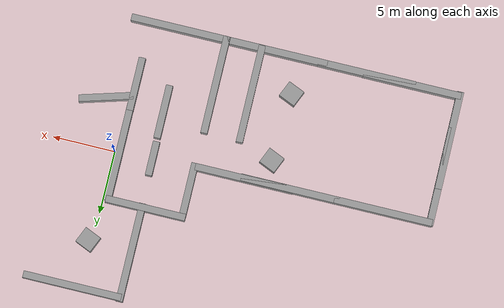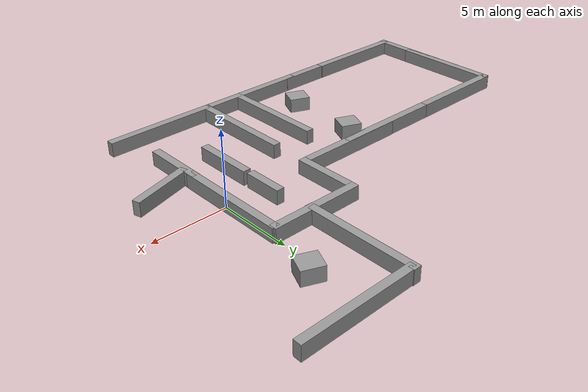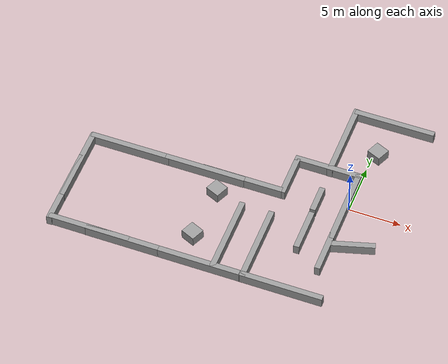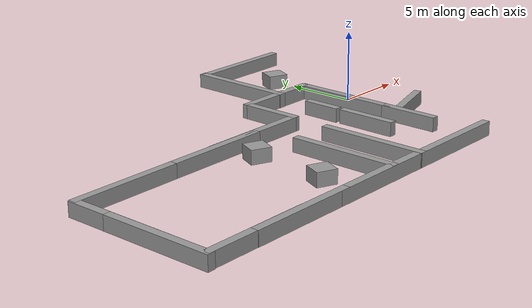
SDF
<sdf version="1.6">
 <model name="Maze01">
  <link name="link_4_clone_0">
   <pose>-21.4897 -10.6297 9e-06 0 -0 0</pose>
   <inertial>
    <mass>4.30693</mass>
    <inertia><ixx>0.46587</ixx><ixy>0</ixy><ixz>0</ixz><iyy>22.6991</iyy><iyz>0</iyz><izz>22.4471</izz></inertia>
   </inertial>
   <visual name="visual">
    <geometry><box><size>7.88951 0.545905 1</size></box></geometry>
    <material>
     <lighting>1</lighting>
     <script><uri>file://media/materials/scripts/gazebo.material</uri><name>Gazebo/Grey</name></script>
     <ambient>0.3 0.3 0.3 1</ambient>
     <diffuse>0.7 0.7 0.7 1</diffuse>
     <specular>0.01 0.01 0.01 1</specular>
     <emissive>0 0 0 1</emissive>
     <shader type="pixel"/>
    </material>
   </visual>
   <collision name="collision">
    <geometry><box><size>7.88951 0.545905 1</size></box></geometry>
    <surface>
     <friction>
      <ode><mu>1</mu><mu2>1</mu2><fdir1>0 0 0</fdir1><slip1>0</slip1><slip2>0</slip2></ode>
      <torsional>
       <coefficient>1</coefficient>
       <patch_radius>0</patch_radius>
       <surface_radius>0</surface_radius>
       <use_patch_radius>1</use_patch_radius>
       <ode><slip>0</slip></ode>
      </torsional>
     </friction>
     <bounce><restitution_coefficient>0</restitution_coefficient><threshold>1e+06</threshold></bounce>
     <contact>
      <collide_without_contact>0</collide_without_contact>
      <collide_without_contact_bitmask>1</collide_without_contact_bitmask>
      <collide_bitmask>1</collide_bitmask>
      <ode>
       <soft_cfm>0</soft_cfm>
       <soft_erp>0.2</soft_erp>
       <kp>1e+13</kp>
       <kd>1</kd>
       <max_vel>0.01</max_vel>
       <min_depth>0</min_depth>
      </ode>
      <bullet>
       <split_impulse>1</split_impulse>
       <split_impulse_penetration_threshold>-0.01</split_impulse_penetration_threshold>
       <soft_cfm>0</soft_cfm>
       <soft_erp>0.2</soft_erp>
       <kp>1e+13</kp>
       <kd>1</kd>
      </bullet>
     </contact>
    </surface>
   </collision>
  </link>
  <link name="link_4_clone_0_clone">
   <pose>-17.8012 -10.6509 9e-06 0 -0 0</pose>
   <inertial>
    <mass>4.30693</mass>
    <inertia><ixx>0.46587</ixx><ixy>0</ixy><ixz>0</ixz><iyy>22.6991</iyy><iyz>0</iyz><izz>22.4471</izz></inertia>
   </inertial>
   <visual name="visual">
    <geometry><box><size>7.88951 0.545905 1</size></box></geometry>
    <material>
     <lighting>1</lighting>
     <script><uri>file://media/materials/scripts/gazebo.material</uri><name>Gazebo/Grey</name></script>
     <ambient>0.3 0.3 0.3 1</ambient>
     <diffuse>0.7 0.7 0.7 1</diffuse>
     <specular>0.01 0.01 0.01 1</specular>
     <emissive>0 0 0 1</emissive>
     <shader type="pixel"/>
    </material>
   </visual>
   <collision name="collision">
    <geometry><box><size>7.88951 0.545905 1</size></box></geometry>
    <surface>
     <friction>
      <ode><mu>1</mu><mu2>1</mu2><fdir1>0 0 0</fdir1><slip1>0</slip1><slip2>0</slip2></ode>
      <torsional>
       <coefficient>1</coefficient>
       <patch_radius>0</patch_radius>
       <surface_radius>0</surface_radius>
       <use_patch_radius>1</use_patch_radius>
       <ode><slip>0</slip></ode>
      </torsional>
     </friction>
     <bounce><restitution_coefficient>0</restitution_coefficient><threshold>1e+06</threshold></bounce>
     <contact>
      <collide_without_contact>0</collide_without_contact>
      <collide_without_contact_bitmask>1</collide_without_contact_bitmask>
      <collide_bitmask>1</collide_bitmask>
      <ode>
       <soft_cfm>0</soft_cfm>
       <soft_erp>0.2</soft_erp>
       <kp>1e+13</kp>
       <kd>1</kd>
       <max_vel>0.01</max_vel>
       <min_depth>0</min_depth>
      </ode>
      <bullet>
       <split_impulse>1</split_impulse>
       <split_impulse_penetration_threshold>-0.01</split_impulse_penetration_threshold>
       <soft_cfm>0</soft_cfm>
       <soft_erp>0.2</soft_erp>
       <kp>1e+13</kp>
       <kd>1</kd>
      </bullet>
     </contact>
    </surface>
   </collision>
  </link>
  <link name="link_4_clone_0_clone_clone">
   <pose>-21.5718 -0.350427 9e-06 0 -0 0</pose>
   <inertial>
    <mass>4.30693</mass>
    <inertia><ixx>0.46587</ixx><ixy>0</ixy><ixz>0</ixz><iyy>22.6991</iyy><iyz>0</iyz><izz>22.4471</izz></inertia>
   </inertial>
   <visual name="visual">
    <geometry><box><size>7.88951 0.545905 1</size></box></geometry>
    <material>
     <lighting>1</lighting>
     <script><uri>file://media/materials/scripts/gazebo.material</uri><name>Gazebo/Grey</name></script>
     <ambient>0.3 0.3 0.3 1</ambient>
     <diffuse>0.7 0.7 0.7 1</diffuse>
     <specular>0.01 0.01 0.01 1</specular>
     <emissive>0 0 0 1</emissive>
     <shader type="pixel"/>
    </material>
   </visual>
   <collision name="collision">
    <geometry><box><size>7.88951 0.545905 1</size></box></geometry>
    <surface>
     <friction>
      <ode><mu>1</mu><mu2>1</mu2><fdir1>0 0 0</fdir1><slip1>0</slip1><slip2>0</slip2></ode>
      <torsional>
       <coefficient>1</coefficient>
       <patch_radius>0</patch_radius>
       <surface_radius>0</surface_radius>
       <use_patch_radius>1</use_patch_radius>
       <ode><slip>0</slip></ode>
      </torsional>
     </friction>
     <bounce><restitution_coefficient>0</restitution_coefficient><threshold>1e+06</threshold></bounce>
     <contact>
      <collide_without_contact>0</collide_without_contact>
      <collide_without_contact_bitmask>1</collide_without_contact_bitmask>
      <collide_bitmask>1</collide_bitmask>
      <ode>
       <soft_cfm>0</soft_cfm>
       <soft_erp>0.2</soft_erp>
       <kp>1e+13</kp>
       <kd>1</kd>
       <max_vel>0.01</max_vel>
       <min_depth>0</min_depth>
      </ode>
      <bullet>
       <split_impulse>1</split_impulse>
       <split_impulse_penetration_threshold>-0.01</split_impulse_penetration_threshold>
       <soft_cfm>0</soft_cfm>
       <soft_erp>0.2</soft_erp>
       <kp>1e+13</kp>
       <kd>1</kd>
      </bullet>
     </contact>
    </surface>
   </collision>
  </link>
  <link name="link_4_clone_0_clone_clone_0">
   <pose>-14.0594 -0.346312 9e-06 0 -0 0</pose>
   <inertial>
    <mass>4.30693</mass>
    <inertia><ixx>0.46587</ixx><ixy>0</ixy><ixz>0</ixz><iyy>22.6991</iyy><iyz>0</iyz><izz>22.4471</izz></inertia>
   </inertial>
   <visual name="visual">
    <geometry><box><size>7.88951 0.545905 1</size></box></geometry>
    <material>
     <lighting>1</lighting>
     <script><uri>file://media/materials/scripts/gazebo.material</uri><name>Gazebo/Grey</name></script>
     <ambient>0.3 0.3 0.3 1</ambient>
     <diffuse>0.7 0.7 0.7 1</diffuse>
     <specular>0.01 0.01 0.01 1</specular>
     <emissive>0 0 0 1</emissive>
     <shader type="pixel"/>
    </material>
   </visual>
   <collision name="collision">
    <geometry><box><size>7.88951 0.545905 1</size></box></geometry>
    <surface>
     <friction>
      <ode><mu>1</mu><mu2>1</mu2><fdir1>0 0 0</fdir1><slip1>0</slip1><slip2>0</slip2></ode>
      <torsional>
       <coefficient>1</coefficient>
       <patch_radius>0</patch_radius>
       <surface_radius>0</surface_radius>
       <use_patch_radius>1</use_patch_radius>
       <ode><slip>0</slip></ode>
      </torsional>
     </friction>
     <bounce><restitution_coefficient>0</restitution_coefficient><threshold>1e+06</threshold></bounce>
     <contact>
      <collide_without_contact>0</collide_without_contact>
      <collide_without_contact_bitmask>1</collide_without_contact_bitmask>
      <collide_bitmask>1</collide_bitmask>
      <ode>
       <soft_cfm>0</soft_cfm>
       <soft_erp>0.2</soft_erp>
       <kp>1e+13</kp>
       <kd>1</kd>
       <max_vel>0.01</max_vel>
       <min_depth>0</min_depth>
      </ode>
      <bullet>
       <split_impulse>1</split_impulse>
       <split_impulse_penetration_threshold>-0.01</split_impulse_penetration_threshold>
       <soft_cfm>0</soft_cfm>
       <soft_erp>0.2</soft_erp>
       <kp>1e+13</kp>
       <kd>1</kd>
      </bullet>
     </contact>
    </surface>
   </collision>
  </link>
  <link name="link_4_clone_0_clone_clone_1">
   <pose>-10.6658 -10.6545 9e-06 0 -0 0</pose>
   <inertial>
    <mass>4.30693</mass>
    <inertia><ixx>0.46587</ixx><ixy>0</ixy><ixz>0</ixz><iyy>22.6991</iyy><iyz>0</iyz><izz>22.4471</izz></inertia>
   </inertial>
   <visual name="visual">
    <geometry><box><size>7.88951 0.545905 1</size></box></geometry>
    <material>
     <lighting>1</lighting>
     <script><uri>file://media/materials/scripts/gazebo.material</uri><name>Gazebo/Grey</name></script>
     <ambient>0.3 0.3 0.3 1</ambient>
     <diffuse>0.7 0.7 0.7 1</diffuse>
     <specular>0.01 0.01 0.01 1</specular>
     <emissive>0 0 0 1</emissive>
     <shader type="pixel"/>
    </material>
   </visual>
   <collision name="collision">
    <geometry><box><size>7.88951 0.545905 1</size></box></geometry>
    <surface>
     <friction>
      <ode><mu>1</mu><mu2>1</mu2><fdir1>0 0 0</fdir1><slip1>0</slip1><slip2>0</slip2></ode>
      <torsional>
       <coefficient>1</coefficient>
       <patch_radius>0</patch_radius>
       <surface_radius>0</surface_radius>
       <use_patch_radius>1</use_patch_radius>
       <ode><slip>0</slip></ode>
      </torsional>
     </friction>
     <bounce><restitution_coefficient>0</restitution_coefficient><threshold>1e+06</threshold></bounce>
     <contact>
      <collide_without_contact>0</collide_without_contact>
      <collide_without_contact_bitmask>1</collide_without_contact_bitmask>
      <collide_bitmask>1</collide_bitmask>
      <ode>
       <soft_cfm>0</soft_cfm>
       <soft_erp>0.2</soft_erp>
       <kp>1e+13</kp>
       <kd>1</kd>
       <max_vel>0.01</max_vel>
       <min_depth>0</min_depth>
      </ode>
      <bullet>
       <split_impulse>1</split_impulse>
       <split_impulse_penetration_threshold>-0.01</split_impulse_penetration_threshold>
       <soft_cfm>0</soft_cfm>
       <soft_erp>0.2</soft_erp>
       <kp>1e+13</kp>
       <kd>1</kd>
      </bullet>
     </contact>
    </surface>
   </collision>
  </link>
  <link name="link_4_clone_0_clone_clone_1_clone">
   <pose>-3.41756 3.78222 9e-06 0 -0 0</pose>
   <inertial>
    <mass>3.50538</mass>
    <inertia><ixx>0.379168</ixx><ixy>0</ixy><ixz>0</ixz><iyy>12.3366</iyy><iyz>0</iyz><izz>12.1315</izz></inertia>
   </inertial>
   <visual name="visual">
    <geometry><box><size>6.42122 0.545905 1</size></box></geometry>
    <material>
     <lighting>1</lighting>
     <script><uri>file://media/materials/scripts/gazebo.material</uri><name>Gazebo/Grey</name></script>
     <ambient>0.3 0.3 0.3 1</ambient>
     <diffuse>0.7 0.7 0.7 1</diffuse>
     <specular>0.01 0.01 0.01 1</specular>
     <emissive>0 0 0 1</emissive>
     <shader type="pixel"/>
    </material>
   </visual>
   <collision name="collision">
    <geometry><box><size>6.42122 0.545905 1</size></box></geometry>
    <surface>
     <friction>
      <ode><mu>1</mu><mu2>1</mu2><fdir1>0 0 0</fdir1><slip1>0</slip1><slip2>0</slip2></ode>
      <torsional>
       <coefficient>1</coefficient>
       <patch_radius>0</patch_radius>
       <surface_radius>0</surface_radius>
       <use_patch_radius>1</use_patch_radius>
       <ode><slip>0</slip></ode>
      </torsional>
     </friction>
     <bounce><restitution_coefficient>0</restitution_coefficient><threshold>1e+06</threshold></bounce>
     <contact>
      <collide_without_contact>0</collide_without_contact>
      <collide_without_contact_bitmask>1</collide_without_contact_bitmask>
      <collide_bitmask>1</collide_bitmask>
      <ode>
       <soft_cfm>0</soft_cfm>
       <soft_erp>0.2</soft_erp>
       <kp>1e+13</kp>
       <kd>1</kd>
       <max_vel>0.01</max_vel>
       <min_depth>0</min_depth>
      </ode>
      <bullet>
       <split_impulse>1</split_impulse>
       <split_impulse_penetration_threshold>-0.01</split_impulse_penetration_threshold>
       <soft_cfm>0</soft_cfm>
       <soft_erp>0.2</soft_erp>
       <kp>1e+13</kp>
       <kd>1</kd>
      </bullet>
     </contact>
    </surface>
   </collision>
  </link>
  <link name="link_4_clone_0_clone_clone_1_clone_0">
   <pose>-2.67814 -10.6624 9e-06 0 -0 0</pose>
   <inertial>
    <mass>4.30693</mass>
    <inertia><ixx>0.46587</ixx><ixy>0</ixy><ixz>0</ixz><iyy>22.6991</iyy><iyz>0</iyz><izz>22.4471</izz></inertia>
   </inertial>
   <visual name="visual">
    <geometry><box><size>7.88951 0.545905 1</size></box></geometry>
    <material>
     <lighting>1</lighting>
     <script><uri>file://media/materials/scripts/gazebo.material</uri><name>Gazebo/Grey</name></script>
     <ambient>0.3 0.3 0.3 1</ambient>
     <diffuse>0.7 0.7 0.7 1</diffuse>
     <specular>0.01 0.01 0.01 1</specular>
     <emissive>0 0 0 1</emissive>
     <shader type="pixel"/>
    </material>
   </visual>
   <collision name="collision">
    <geometry><box><size>7.88951 0.545905 1</size></box></geometry>
    <surface>
     <friction>
      <ode><mu>1</mu><mu2>1</mu2><fdir1>0 0 0</fdir1><slip1>0</slip1><slip2>0</slip2></ode>
      <torsional>
       <coefficient>1</coefficient>
       <patch_radius>0</patch_radius>
       <surface_radius>0</surface_radius>
       <use_patch_radius>1</use_patch_radius>
       <ode><slip>0</slip></ode>
      </torsional>
     </friction>
     <bounce><restitution_coefficient>0</restitution_coefficient><threshold>1e+06</threshold></bounce>
     <contact>
      <collide_without_contact>0</collide_without_contact>
      <collide_without_contact_bitmask>1</collide_without_contact_bitmask>
      <collide_bitmask>1</collide_bitmask>
      <ode>
       <soft_cfm>0</soft_cfm>
       <soft_erp>0.2</soft_erp>
       <kp>1e+13</kp>
       <kd>1</kd>
       <max_vel>0.01</max_vel>
       <min_depth>0</min_depth>
      </ode>
      <bullet>
       <split_impulse>1</split_impulse>
       <split_impulse_penetration_threshold>-0.01</split_impulse_penetration_threshold>
       <soft_cfm>0</soft_cfm>
       <soft_erp>0.2</soft_erp>
       <kp>1e+13</kp>
       <kd>1</kd>
      </bullet>
     </contact>
    </surface>
   </collision>
  </link>
  <link name="link_4_clone_0_clone_clone_1_clone_0_clone_0">
   <pose>0.695253 11.0512 9e-06 0 -0 0</pose>
   <inertial>
    <mass>4.30693</mass>
    <inertia><ixx>0.46587</ixx><ixy>0</ixy><ixz>0</ixz><iyy>22.6991</iyy><iyz>0</iyz><izz>22.4471</izz></inertia>
   </inertial>
   <visual name="visual">
    <geometry><box><size>7.88951 0.545905 1</size></box></geometry>
    <material>
     <lighting>1</lighting>
     <script><uri>file://media/materials/scripts/gazebo.material</uri><name>Gazebo/Grey</name></script>
     <ambient>0.3 0.3 0.3 1</ambient>
     <diffuse>0.7 0.7 0.7 1</diffuse>
     <specular>0.01 0.01 0.01 1</specular>
     <emissive>0 0 0 1</emissive>
     <shader type="pixel"/>
    </material>
   </visual>
   <collision name="collision">
    <geometry><box><size>7.88951 0.545905 1</size></box></geometry>
    <surface>
     <friction>
      <ode><mu>1</mu><mu2>1</mu2><fdir1>0 0 0</fdir1><slip1>0</slip1><slip2>0</slip2></ode>
      <torsional>
       <coefficient>1</coefficient>
       <patch_radius>0</patch_radius>
       <surface_radius>0</surface_radius>
       <use_patch_radius>1</use_patch_radius>
       <ode><slip>0</slip></ode>
      </torsional>
     </friction>
     <bounce><restitution_coefficient>0</restitution_coefficient><threshold>1e+06</threshold></bounce>
     <contact>
      <collide_without_contact>0</collide_without_contact>
      <collide_without_contact_bitmask>1</collide_without_contact_bitmask>
      <collide_bitmask>1</collide_bitmask>
      <ode>
       <soft_cfm>0</soft_cfm>
       <soft_erp>0.2</soft_erp>
       <kp>1e+13</kp>
       <kd>1</kd>
       <max_vel>0.01</max_vel>
       <min_depth>0</min_depth>
      </ode>
      <bullet>
       <split_impulse>1</split_impulse>
       <split_impulse_penetration_threshold>-0.01</split_impulse_penetration_threshold>
       <soft_cfm>0</soft_cfm>
       <soft_erp>0.2</soft_erp>
       <kp>1e+13</kp>
       <kd>1</kd>
      </bullet>
     </contact>
    </surface>
   </collision>
  </link>
  <link name="link_4_clone_0_clone_clone_2">
   <pose>-10.3733 -0.31076 9e-06 0 -0 0</pose>
   <inertial>
    <mass>4.30693</mass>
    <inertia><ixx>0.46587</ixx><ixy>0</ixy><ixz>0</ixz><iyy>22.6991</iyy><iyz>0</iyz><izz>22.4471</izz></inertia>
   </inertial>
   <visual name="visual">
    <geometry><box><size>7.88951 0.545905 1</size></box></geometry>
    <material>
     <lighting>1</lighting>
     <script><uri>file://media/materials/scripts/gazebo.material</uri><name>Gazebo/Grey</name></script>
     <ambient>0.3 0.3 0.3 1</ambient>
     <diffuse>0.7 0.7 0.7 1</diffuse>
     <specular>0.01 0.01 0.01 1</specular>
     <emissive>0 0 0 1</emissive>
     <shader type="pixel"/>
    </material>
   </visual>
   <collision name="collision">
    <geometry><box><size>7.88951 0.545905 1</size></box></geometry>
    <surface>
     <friction>
      <ode><mu>1</mu><mu2>1</mu2><fdir1>0 0 0</fdir1><slip1>0</slip1><slip2>0</slip2></ode>
      <torsional>
       <coefficient>1</coefficient>
       <patch_radius>0</patch_radius>
       <surface_radius>0</surface_radius>
       <use_patch_radius>1</use_patch_radius>
       <ode><slip>0</slip></ode>
      </torsional>
     </friction>
     <bounce><restitution_coefficient>0</restitution_coefficient><threshold>1e+06</threshold></bounce>
     <contact>
      <collide_without_contact>0</collide_without_contact>
      <collide_without_contact_bitmask>1</collide_without_contact_bitmask>
      <collide_bitmask>1</collide_bitmask>
      <ode>
       <soft_cfm>0</soft_cfm>
       <soft_erp>0.2</soft_erp>
       <kp>1e+13</kp>
       <kd>1</kd>
       <max_vel>0.01</max_vel>
       <min_depth>0</min_depth>
      </ode>
      <bullet>
       <split_impulse>1</split_impulse>
       <split_impulse_penetration_threshold>-0.01</split_impulse_penetration_threshold>
       <soft_cfm>0</soft_cfm>
       <soft_erp>0.2</soft_erp>
       <kp>1e+13</kp>
       <kd>1</kd>
      </bullet>
     </contact>
    </surface>
   </collision>
  </link>
  <link name="link_4_clone_1">
   <pose>-25.335 -7.00928 9e-06 0 0 -1.56693</pose>
   <inertial>
    <mass>4.30693</mass>
    <inertia><ixx>0.46587</ixx><ixy>0</ixy><ixz>0</ixz><iyy>22.6991</iyy><iyz>0</iyz><izz>22.4471</izz></inertia>
   </inertial>
   <visual name="visual">
    <geometry><box><size>7.88951 0.545905 1</size></box></geometry>
    <material>
     <lighting>1</lighting>
     <script><uri>file://media/materials/scripts/gazebo.material</uri><name>Gazebo/Grey</name></script>
     <ambient>0.3 0.3 0.3 1</ambient>
     <diffuse>0.7 0.7 0.7 1</diffuse>
     <specular>0.01 0.01 0.01 1</specular>
     <emissive>0 0 0 1</emissive>
     <shader type="pixel"/>
    </material>
   </visual>
   <collision name="collision">
    <geometry><box><size>7.88951 0.545905 1</size></box></geometry>
    <surface>
     <friction>
      <ode><mu>1</mu><mu2>1</mu2><fdir1>0 0 0</fdir1><slip1>0</slip1><slip2>0</slip2></ode>
      <torsional>
       <coefficient>1</coefficient>
       <patch_radius>0</patch_radius>
       <surface_radius>0</surface_radius>
       <use_patch_radius>1</use_patch_radius>
       <ode><slip>0</slip></ode>
      </torsional>
     </friction>
     <bounce><restitution_coefficient>0</restitution_coefficient><threshold>1e+06</threshold></bounce>
     <contact>
      <collide_without_contact>0</collide_without_contact>
      <collide_without_contact_bitmask>1</collide_without_contact_bitmask>
      <collide_bitmask>1</collide_bitmask>
      <ode>
       <soft_cfm>0</soft_cfm>
       <soft_erp>0.2</soft_erp>
       <kp>1e+13</kp>
       <kd>1</kd>
       <max_vel>0.01</max_vel>
       <min_depth>0</min_depth>
      </ode>
      <bullet>
       <split_impulse>1</split_impulse>
       <split_impulse_penetration_threshold>-0.01</split_impulse_penetration_threshold>
       <soft_cfm>0</soft_cfm>
       <soft_erp>0.2</soft_erp>
       <kp>1e+13</kp>
       <kd>1</kd>
      </bullet>
     </contact>
    </surface>
   </collision>
  </link>
  <link name="link_4_clone_1_clone">
   <pose>-25.3389 -4.07653 9e-06 0 0 -1.56693</pose>
   <inertial>
    <mass>4.30693</mass>
    <inertia><ixx>0.46587</ixx><ixy>0</ixy><ixz>0</ixz><iyy>22.6991</iyy><iyz>0</iyz><izz>22.4471</izz></inertia>
   </inertial>
   <visual name="visual">
    <geometry><box><size>7.88951 0.545905 1</size></box></geometry>
    <material>
     <lighting>1</lighting>
     <script><uri>file://media/materials/scripts/gazebo.material</uri><name>Gazebo/Grey</name></script>
     <ambient>0.3 0.3 0.3 1</ambient>
     <diffuse>0.7 0.7 0.7 1</diffuse>
     <specular>0.01 0.01 0.01 1</specular>
     <emissive>0 0 0 1</emissive>
     <shader type="pixel"/>
    </material>
   </visual>
   <collision name="collision">
    <geometry><box><size>7.88951 0.545905 1</size></box></geometry>
    <surface>
     <friction>
      <ode><mu>1</mu><mu2>1</mu2><fdir1>0 0 0</fdir1><slip1>0</slip1><slip2>0</slip2></ode>
      <torsional>
       <coefficient>1</coefficient>
       <patch_radius>0</patch_radius>
       <surface_radius>0</surface_radius>
       <use_patch_radius>1</use_patch_radius>
       <ode><slip>0</slip></ode>
      </torsional>
     </friction>
     <bounce><restitution_coefficient>0</restitution_coefficient><threshold>1e+06</threshold></bounce>
     <contact>
      <collide_without_contact>0</collide_without_contact>
      <collide_without_contact_bitmask>1</collide_without_contact_bitmask>
      <collide_bitmask>1</collide_bitmask>
      <ode>
       <soft_cfm>0</soft_cfm>
       <soft_erp>0.2</soft_erp>
       <kp>1e+13</kp>
       <kd>1</kd>
       <max_vel>0.01</max_vel>
       <min_depth>0</min_depth>
      </ode>
      <bullet>
       <split_impulse>1</split_impulse>
       <split_impulse_penetration_threshold>-0.01</split_impulse_penetration_threshold>
       <soft_cfm>0</soft_cfm>
       <soft_erp>0.2</soft_erp>
       <kp>1e+13</kp>
       <kd>1</kd>
      </bullet>
     </contact>
    </surface>
   </collision>
  </link>
  <link name="link_4_clone_1_clone_0">
   <pose>-9.31294 -6.93569 9e-06 0 0 -1.56693</pose>
   <inertial>
    <mass>4.30693</mass>
    <inertia><ixx>0.46587</ixx><ixy>0</ixy><ixz>0</ixz><iyy>22.6991</iyy><iyz>0</iyz><izz>22.4471</izz></inertia>
   </inertial>
   <visual name="visual">
    <geometry><box><size>7.88951 0.545905 1</size></box></geometry>
    <material>
     <lighting>1</lighting>
     <script><uri>file://media/materials/scripts/gazebo.material</uri><name>Gazebo/Grey</name></script>
     <ambient>0.3 0.3 0.3 1</ambient>
     <diffuse>0.7 0.7 0.7 1</diffuse>
     <specular>0.01 0.01 0.01 1</specular>
     <emissive>0 0 0 1</emissive>
     <shader type="pixel"/>
    </material>
   </visual>
   <collision name="collision">
    <geometry><box><size>7.88951 0.545905 1</size></box></geometry>
    <surface>
     <friction>
      <ode><mu>1</mu><mu2>1</mu2><fdir1>0 0 0</fdir1><slip1>0</slip1><slip2>0</slip2></ode>
      <torsional>
       <coefficient>1</coefficient>
       <patch_radius>0</patch_radius>
       <surface_radius>0</surface_radius>
       <use_patch_radius>1</use_patch_radius>
       <ode><slip>0</slip></ode>
      </torsional>
     </friction>
     <bounce><restitution_coefficient>0</restitution_coefficient><threshold>1e+06</threshold></bounce>
     <contact>
      <collide_without_contact>0</collide_without_contact>
      <collide_without_contact_bitmask>1</collide_without_contact_bitmask>
      <collide_bitmask>1</collide_bitmask>
      <ode>
       <soft_cfm>0</soft_cfm>
       <soft_erp>0.2</soft_erp>
       <kp>1e+13</kp>
       <kd>1</kd>
       <max_vel>0.01</max_vel>
       <min_depth>0</min_depth>
      </ode>
      <bullet>
       <split_impulse>1</split_impulse>
       <split_impulse_penetration_threshold>-0.01</split_impulse_penetration_threshold>
       <soft_cfm>0</soft_cfm>
       <soft_erp>0.2</soft_erp>
       <kp>1e+13</kp>
       <kd>1</kd>
      </bullet>
     </contact>
    </surface>
   </collision>
  </link>
  <link name="link_4_clone_1_clone_1">
   <pose>-6.43669 -6.98415 9e-06 0 0 -1.56693</pose>
   <inertial>
    <mass>4.30693</mass>
    <inertia><ixx>0.46587</ixx><ixy>0</ixy><ixz>0</ixz><iyy>22.6991</iyy><iyz>0</iyz><izz>22.4471</izz></inertia>
   </inertial>
   <visual name="visual">
    <geometry><box><size>7.88951 0.545905 1</size></box></geometry>
    <material>
     <lighting>1</lighting>
     <script><uri>file://media/materials/scripts/gazebo.material</uri><name>Gazebo/Grey</name></script>
     <ambient>0.3 0.3 0.3 1</ambient>
     <diffuse>0.7 0.7 0.7 1</diffuse>
     <specular>0.01 0.01 0.01 1</specular>
     <emissive>0 0 0 1</emissive>
     <shader type="pixel"/>
    </material>
   </visual>
   <collision name="collision">
    <geometry><box><size>7.88951 0.545905 1</size></box></geometry>
    <surface>
     <friction>
      <ode><mu>1</mu><mu2>1</mu2><fdir1>0 0 0</fdir1><slip1>0</slip1><slip2>0</slip2></ode>
      <torsional>
       <coefficient>1</coefficient>
       <patch_radius>0</patch_radius>
       <surface_radius>0</surface_radius>
       <use_patch_radius>1</use_patch_radius>
       <ode><slip>0</slip></ode>
      </torsional>
     </friction>
     <bounce><restitution_coefficient>0</restitution_coefficient><threshold>1e+06</threshold></bounce>
     <contact>
      <collide_without_contact>0</collide_without_contact>
      <collide_without_contact_bitmask>1</collide_without_contact_bitmask>
      <collide_bitmask>1</collide_bitmask>
      <ode>
       <soft_cfm>0</soft_cfm>
       <soft_erp>0.2</soft_erp>
       <kp>1e+13</kp>
       <kd>1</kd>
       <max_vel>0.01</max_vel>
       <min_depth>0</min_depth>
      </ode>
      <bullet>
       <split_impulse>1</split_impulse>
       <split_impulse_penetration_threshold>-0.01</split_impulse_penetration_threshold>
       <soft_cfm>0</soft_cfm>
       <soft_erp>0.2</soft_erp>
       <kp>1e+13</kp>
       <kd>1</kd>
      </bullet>
     </contact>
    </surface>
   </collision>
  </link>
  <link name="link_4_clone_1_clone_1_clone">
   <pose>-6.35585 1.56416 9e-06 0 0 -1.56693</pose>
   <inertial>
    <mass>2.3361</mass>
    <inertia><ixx>0.25269</ixx><ixy>0</ixy><ixz>0</ixz><iyy>3.75965</iyy><iyz>0</iyz><izz>3.62299</izz></inertia>
   </inertial>
   <visual name="visual">
    <geometry><box><size>4.27931 0.545905 1</size></box></geometry>
    <material>
     <lighting>1</lighting>
     <script><uri>file://media/materials/scripts/gazebo.material</uri><name>Gazebo/Grey</name></script>
     <ambient>0.3 0.3 0.3 1</ambient>
     <diffuse>0.7 0.7 0.7 1</diffuse>
     <specular>0.01 0.01 0.01 1</specular>
     <emissive>0 0 0 1</emissive>
     <shader type="pixel"/>
    </material>
   </visual>
   <collision name="collision">
    <geometry><box><size>4.27931 0.545905 1</size></box></geometry>
    <surface>
     <friction>
      <ode><mu>1</mu><mu2>1</mu2><fdir1>0 0 0</fdir1><slip1>0</slip1><slip2>0</slip2></ode>
      <torsional>
       <coefficient>1</coefficient>
       <patch_radius>0</patch_radius>
       <surface_radius>0</surface_radius>
       <use_patch_radius>1</use_patch_radius>
       <ode><slip>0</slip></ode>
      </torsional>
     </friction>
     <bounce><restitution_coefficient>0</restitution_coefficient><threshold>1e+06</threshold></bounce>
     <contact>
      <collide_without_contact>0</collide_without_contact>
      <collide_without_contact_bitmask>1</collide_without_contact_bitmask>
      <collide_bitmask>1</collide_bitmask>
      <ode>
       <soft_cfm>0</soft_cfm>
       <soft_erp>0.2</soft_erp>
       <kp>1e+13</kp>
       <kd>1</kd>
       <max_vel>0.01</max_vel>
       <min_depth>0</min_depth>
      </ode>
      <bullet>
       <split_impulse>1</split_impulse>
       <split_impulse_penetration_threshold>-0.01</split_impulse_penetration_threshold>
       <soft_cfm>0</soft_cfm>
       <soft_erp>0.2</soft_erp>
       <kp>1e+13</kp>
       <kd>1</kd>
      </bullet>
     </contact>
    </surface>
   </collision>
  </link>
  <link name="link_4_clone_1_clone_1_clone_0">
   <pose>-0.36051 -0.054697 9e-06 0 0 -1.56693</pose>
   <inertial>
    <mass>4.30693</mass>
    <inertia><ixx>0.46587</ixx><ixy>0</ixy><ixz>0</ixz><iyy>22.6991</iyy><iyz>0</iyz><izz>22.4471</izz></inertia>
   </inertial>
   <visual name="visual">
    <geometry><box><size>7.88951 0.545905 1</size></box></geometry>
    <material>
     <lighting>1</lighting>
     <script><uri>file://media/materials/scripts/gazebo.material</uri><name>Gazebo/Grey</name></script>
     <ambient>0.3 0.3 0.3 1</ambient>
     <diffuse>0.7 0.7 0.7 1</diffuse>
     <specular>0.01 0.01 0.01 1</specular>
     <emissive>0 0 0 1</emissive>
     <shader type="pixel"/>
    </material>
   </visual>
   <collision name="collision">
    <geometry><box><size>7.88951 0.545905 1</size></box></geometry>
    <surface>
     <friction>
      <ode><mu>1</mu><mu2>1</mu2><fdir1>0 0 0</fdir1><slip1>0</slip1><slip2>0</slip2></ode>
      <torsional>
       <coefficient>1</coefficient>
       <patch_radius>0</patch_radius>
       <surface_radius>0</surface_radius>
       <use_patch_radius>1</use_patch_radius>
       <ode><slip>0</slip></ode>
      </torsional>
     </friction>
     <bounce><restitution_coefficient>0</restitution_coefficient><threshold>1e+06</threshold></bounce>
     <contact>
      <collide_without_contact>0</collide_without_contact>
      <collide_without_contact_bitmask>1</collide_without_contact_bitmask>
      <collide_bitmask>1</collide_bitmask>
      <ode>
       <soft_cfm>0</soft_cfm>
       <soft_erp>0.2</soft_erp>
       <kp>1e+13</kp>
       <kd>1</kd>
       <max_vel>0.01</max_vel>
       <min_depth>0</min_depth>
      </ode>
      <bullet>
       <split_impulse>1</split_impulse>
       <split_impulse_penetration_threshold>-0.01</split_impulse_penetration_threshold>
       <soft_cfm>0</soft_cfm>
       <soft_erp>0.2</soft_erp>
       <kp>1e+13</kp>
       <kd>1</kd>
      </bullet>
     </contact>
    </surface>
   </collision>
  </link>
  <link name="link_4_clone_1_clone_1_clone_2">
   <pose>-3.1358 7.42604 9e-06 0 0 -1.56693</pose>
   <inertial>
    <mass>4.30693</mass>
    <inertia><ixx>0.46587</ixx><ixy>0</ixy><ixz>0</ixz><iyy>22.6991</iyy><iyz>0</iyz><izz>22.4471</izz></inertia>
   </inertial>
   <visual name="visual">
    <geometry><box><size>7.88951 0.545905 1</size></box></geometry>
    <material>
     <lighting>1</lighting>
     <script><uri>file://media/materials/scripts/gazebo.material</uri><name>Gazebo/Grey</name></script>
     <ambient>0.3 0.3 0.3 1</ambient>
     <diffuse>0.7 0.7 0.7 1</diffuse>
     <specular>0.01 0.01 0.01 1</specular>
     <emissive>0 0 0 1</emissive>
     <shader type="pixel"/>
    </material>
   </visual>
   <collision name="collision">
    <geometry><box><size>7.88951 0.545905 1</size></box></geometry>
    <surface>
     <friction>
      <ode><mu>1</mu><mu2>1</mu2><fdir1>0 0 0</fdir1><slip1>0</slip1><slip2>0</slip2></ode>
      <torsional>
       <coefficient>1</coefficient>
       <patch_radius>0</patch_radius>
       <surface_radius>0</surface_radius>
       <use_patch_radius>1</use_patch_radius>
       <ode><slip>0</slip></ode>
      </torsional>
     </friction>
     <bounce><restitution_coefficient>0</restitution_coefficient><threshold>1e+06</threshold></bounce>
     <contact>
      <collide_without_contact>0</collide_without_contact>
      <collide_without_contact_bitmask>1</collide_without_contact_bitmask>
      <collide_bitmask>1</collide_bitmask>
      <ode>
       <soft_cfm>0</soft_cfm>
       <soft_erp>0.2</soft_erp>
       <kp>1e+13</kp>
       <kd>1</kd>
       <max_vel>0.01</max_vel>
       <min_depth>0</min_depth>
      </ode>
      <bullet>
       <split_impulse>1</split_impulse>
       <split_impulse_penetration_threshold>-0.01</split_impulse_penetration_threshold>
       <soft_cfm>0</soft_cfm>
       <soft_erp>0.2</soft_erp>
       <kp>1e+13</kp>
       <kd>1</kd>
      </bullet>
     </contact>
    </surface>
   </collision>
  </link>
  <link name="link_4_clone_1_clone_1_clone_clone">
   <pose>-3.01465 -0.148136 9e-06 0 0 -1.56693</pose>
   <inertial>
    <mass>1.50003</mass>
    <inertia>
     <ixx>0.162255</ixx>
     <ixy>0</ixy>
     <ixz>0</ixz>
     <iyy>1.06881</iyy>
     <iyz>0</iyz>
     <izz>0.981058</izz>
    </inertia>
   </inertial>
   <visual name="visual">
    <geometry><box><size>2.74778 0.545905 1</size></box></geometry>
    <material>
     <lighting>1</lighting>
     <script><uri>file://media/materials/scripts/gazebo.material</uri><name>Gazebo/Grey</name></script>
     <ambient>0.3 0.3 0.3 1</ambient>
     <diffuse>0.7 0.7 0.7 1</diffuse>
     <specular>0.01 0.01 0.01 1</specular>
     <emissive>0 0 0 1</emissive>
     <shader type="pixel"/>
    </material>
   </visual>
   <collision name="collision">
    <geometry><box><size>2.74778 0.545905 1</size></box></geometry>
    <surface>
     <friction>
      <ode><mu>1</mu><mu2>1</mu2><fdir1>0 0 0</fdir1><slip1>0</slip1><slip2>0</slip2></ode>
      <torsional>
       <coefficient>1</coefficient>
       <patch_radius>0</patch_radius>
       <surface_radius>0</surface_radius>
       <use_patch_radius>1</use_patch_radius>
       <ode><slip>0</slip></ode>
      </torsional>
     </friction>
     <bounce><restitution_coefficient>0</restitution_coefficient><threshold>1e+06</threshold></bounce>
     <contact>
      <collide_without_contact>0</collide_without_contact>
      <collide_without_contact_bitmask>1</collide_without_contact_bitmask>
      <collide_bitmask>1</collide_bitmask>
      <ode>
       <soft_cfm>0</soft_cfm>
       <soft_erp>0.2</soft_erp>
       <kp>1e+13</kp>
       <kd>1</kd>
       <max_vel>0.01</max_vel>
       <min_depth>0</min_depth>
      </ode>
      <bullet>
       <split_impulse>1</split_impulse>
       <split_impulse_penetration_threshold>-0.01</split_impulse_penetration_threshold>
       <soft_cfm>0</soft_cfm>
       <soft_erp>0.2</soft_erp>
       <kp>1e+13</kp>
       <kd>1</kd>
      </bullet>
     </contact>
    </surface>
   </collision>
  </link>
  <link name="link_4_clone_1_clone_1_clone_clone_0">
   <pose>-2.95631 -3.9379 9e-06 0 0 -1.56693</pose>
   <inertial>
    <mass>2.3361</mass>
    <inertia><ixx>0.25269</ixx><ixy>0</ixy><ixz>0</ixz><iyy>3.75965</iyy><iyz>0</iyz><izz>3.62299</izz></inertia>
   </inertial>
   <visual name="visual">
    <geometry><box><size>4.27931 0.545905 1</size></box></geometry>
    <material>
     <lighting>1</lighting>
     <script><uri>file://media/materials/scripts/gazebo.material</uri><name>Gazebo/Grey</name></script>
     <ambient>0.3 0.3 0.3 1</ambient>
     <diffuse>0.7 0.7 0.7 1</diffuse>
     <specular>0.01 0.01 0.01 1</specular>
     <emissive>0 0 0 1</emissive>
     <shader type="pixel"/>
    </material>
   </visual>
   <collision name="collision">
    <geometry><box><size>4.27931 0.545905 1</size></box></geometry>
    <surface>
     <friction>
      <ode><mu>1</mu><mu2>1</mu2><fdir1>0 0 0</fdir1><slip1>0</slip1><slip2>0</slip2></ode>
      <torsional>
       <coefficient>1</coefficient>
       <patch_radius>0</patch_radius>
       <surface_radius>0</surface_radius>
       <use_patch_radius>1</use_patch_radius>
       <ode><slip>0</slip></ode>
      </torsional>
     </friction>
     <bounce><restitution_coefficient>0</restitution_coefficient><threshold>1e+06</threshold></bounce>
     <contact>
      <collide_without_contact>0</collide_without_contact>
      <collide_without_contact_bitmask>1</collide_without_contact_bitmask>
      <collide_bitmask>1</collide_bitmask>
      <ode>
       <soft_cfm>0</soft_cfm>
       <soft_erp>0.2</soft_erp>
       <kp>1e+13</kp>
       <kd>1</kd>
       <max_vel>0.01</max_vel>
       <min_depth>0</min_depth>
      </ode>
      <bullet>
       <split_impulse>1</split_impulse>
       <split_impulse_penetration_threshold>-0.01</split_impulse_penetration_threshold>
       <soft_cfm>0</soft_cfm>
       <soft_erp>0.2</soft_erp>
       <kp>1e+13</kp>
       <kd>1</kd>
      </bullet>
     </contact>
    </surface>
   </collision>
  </link>
  <link name="link_4_clone_1_clone_1_clone_clone_0_clone_0">
   <pose>-0.349699 -5.56946 9e-06 0 0 -1.56693</pose>
   <inertial>
    <mass>2.3361</mass>
    <inertia><ixx>0.25269</ixx><ixy>0</ixy><ixz>0</ixz><iyy>3.75965</iyy><iyz>0</iyz><izz>3.62299</izz></inertia>
   </inertial>
   <visual name="visual">
    <geometry><box><size>4.27931 0.545905 1</size></box></geometry>
    <material>
     <lighting>1</lighting>
     <script><uri>file://media/materials/scripts/gazebo.material</uri><name>Gazebo/Grey</name></script>
     <ambient>0.3 0.3 0.3 1</ambient>
     <diffuse>0.7 0.7 0.7 1</diffuse>
     <specular>0.01 0.01 0.01 1</specular>
     <emissive>0 0 0 1</emissive>
     <shader type="pixel"/>
    </material>
   </visual>
   <collision name="collision">
    <geometry><box><size>4.27931 0.545905 1</size></box></geometry>
    <surface>
     <friction>
      <ode><mu>1</mu><mu2>1</mu2><fdir1>0 0 0</fdir1><slip1>0</slip1><slip2>0</slip2></ode>
      <torsional>
       <coefficient>1</coefficient>
       <patch_radius>0</patch_radius>
       <surface_radius>0</surface_radius>
       <use_patch_radius>1</use_patch_radius>
       <ode><slip>0</slip></ode>
      </torsional>
     </friction>
     <bounce><restitution_coefficient>0</restitution_coefficient><threshold>1e+06</threshold></bounce>
     <contact>
      <collide_without_contact>0</collide_without_contact>
      <collide_without_contact_bitmask>1</collide_without_contact_bitmask>
      <collide_bitmask>1</collide_bitmask>
      <ode>
       <soft_cfm>0</soft_cfm>
       <soft_erp>0.2</soft_erp>
       <kp>1e+13</kp>
       <kd>1</kd>
       <max_vel>0.01</max_vel>
       <min_depth>0</min_depth>
      </ode>
      <bullet>
       <split_impulse>1</split_impulse>
       <split_impulse_penetration_threshold>-0.01</split_impulse_penetration_threshold>
       <soft_cfm>0</soft_cfm>
       <soft_erp>0.2</soft_erp>
       <kp>1e+13</kp>
       <kd>1</kd>
      </bullet>
     </contact>
    </surface>
   </collision>
  </link>
  <link name="link_4_clone_1_clone_1_clone_clone_0_clone_clone">
   <pose>1.7146 -4.01354 9e-06 0 -0 0.2833</pose>
   <inertial>
    <mass>2.3361</mass>
    <inertia><ixx>0.25269</ixx><ixy>0</ixy><ixz>0</ixz><iyy>3.75965</iyy><iyz>0</iyz><izz>3.62299</izz></inertia>
   </inertial>
   <visual name="visual">
    <geometry><box><size>4.27931 0.545905 1</size></box></geometry>
    <material>
     <lighting>1</lighting>
     <script><uri>file://media/materials/scripts/gazebo.material</uri><name>Gazebo/Grey</name></script>
     <ambient>0.3 0.3 0.3 1</ambient>
     <diffuse>0.7 0.7 0.7 1</diffuse>
     <specular>0.01 0.01 0.01 1</specular>
     <emissive>0 0 0 1</emissive>
     <shader type="pixel"/>
    </material>
   </visual>
   <collision name="collision">
    <geometry><box><size>4.27931 0.545905 1</size></box></geometry>
    <surface>
     <friction>
      <ode><mu>1</mu><mu2>1</mu2><fdir1>0 0 0</fdir1><slip1>0</slip1><slip2>0</slip2></ode>
      <torsional>
       <coefficient>1</coefficient>
       <patch_radius>0</patch_radius>
       <surface_radius>0</surface_radius>
       <use_patch_radius>1</use_patch_radius>
       <ode><slip>0</slip></ode>
      </torsional>
     </friction>
     <bounce><restitution_coefficient>0</restitution_coefficient><threshold>1e+06</threshold></bounce>
     <contact>
      <collide_without_contact>0</collide_without_contact>
      <collide_without_contact_bitmask>1</collide_without_contact_bitmask>
      <collide_bitmask>1</collide_bitmask>
      <ode>
       <soft_cfm>0</soft_cfm>
       <soft_erp>0.2</soft_erp>
       <kp>1e+13</kp>
       <kd>1</kd>
       <max_vel>0.01</max_vel>
       <min_depth>0</min_depth>
      </ode>
      <bullet>
       <split_impulse>1</split_impulse>
       <split_impulse_penetration_threshold>-0.01</split_impulse_penetration_threshold>
       <soft_cfm>0</soft_cfm>
       <soft_erp>0.2</soft_erp>
       <kp>1e+13</kp>
       <kd>1</kd>
      </bullet>
     </contact>
    </surface>
   </collision>
  </link>
  <link name="link_6">
   <pose>-12.4356 -7.69108 9e-06 0 0 -0.406538</pose>
   <inertial>
    <mass>1.94722</mass>
    <inertia><ixx>0.463684</ixx><ixy>0</ixy><ixz>0</ixz><iyy>0.4935</iyy><iyz>0</iyz><izz>0.632648</izz></inertia>
   </inertial>
   <visual name="visual">
    <geometry><box><size>1.42873 1.36291 1</size></box></geometry>
    <material>
     <lighting>1</lighting>
     <script><uri>file://media/materials/scripts/gazebo.material</uri><name>Gazebo/Grey</name></script>
     <ambient>0.3 0.3 0.3 1</ambient>
     <diffuse>0.7 0.7 0.7 1</diffuse>
     <specular>0.01 0.01 0.01 1</specular>
     <emissive>0 0 0 1</emissive>
    </material>
   </visual>
   <collision name="collision">
    <geometry><box><size>1.42873 1.36291 1</size></box></geometry>
    <surface>
     <friction>
      <ode><mu>1</mu><mu2>1</mu2><fdir1>0 0 0</fdir1><slip1>0</slip1><slip2>0</slip2></ode>
      <torsional>
       <coefficient>1</coefficient>
       <patch_radius>0</patch_radius>
       <surface_radius>0</surface_radius>
       <use_patch_radius>1</use_patch_radius>
       <ode><slip>0</slip></ode>
      </torsional>
     </friction>
     <bounce><restitution_coefficient>0</restitution_coefficient><threshold>1e+06</threshold></bounce>
     <contact>
      <collide_without_contact>0</collide_without_contact>
      <collide_without_contact_bitmask>1</collide_without_contact_bitmask>
      <collide_bitmask>1</collide_bitmask>
      <ode>
       <soft_cfm>0</soft_cfm>
       <soft_erp>0.2</soft_erp>
       <kp>1e+13</kp>
       <kd>1</kd>
       <max_vel>0.01</max_vel>
       <min_depth>0</min_depth>
      </ode>
      <bullet>
       <split_impulse>1</split_impulse>
       <split_impulse_penetration_threshold>-0.01</split_impulse_penetration_threshold>
       <soft_cfm>0</soft_cfm>
       <soft_erp>0.2</soft_erp>
       <kp>1e+13</kp>
       <kd>1</kd>
      </bullet>
     </contact>
    </surface>
   </collision>
  </link>
  <link name="link_6_clone">
   <pose>-12.1551 -2.20744 9e-06 0 0 -0.406538</pose>
   <inertial>
    <mass>1.94722</mass>
    <inertia><ixx>0.463684</ixx><ixy>0</ixy><ixz>0</ixz><iyy>0.4935</iyy><iyz>0</iyz><izz>0.632648</izz></inertia>
   </inertial>
   <visual name="visual">
    <geometry><box><size>1.42873 1.36291 1</size></box></geometry>
    <material>
     <lighting>1</lighting>
     <script><uri>file://media/materials/scripts/gazebo.material</uri><name>Gazebo/Grey</name></script>
     <ambient>0.3 0.3 0.3 1</ambient>
     <diffuse>0.7 0.7 0.7 1</diffuse>
     <specular>0.01 0.01 0.01 1</specular>
     <emissive>0 0 0 1</emissive>
     <shader type="pixel"/>
    </material>
   </visual>
   <collision name="collision">
    <geometry><box><size>1.42873 1.36291 1</size></box></geometry>
    <surface>
     <friction>
      <ode><mu>1</mu><mu2>1</mu2><fdir1>0 0 0</fdir1><slip1>0</slip1><slip2>0</slip2></ode>
      <torsional>
       <coefficient>1</coefficient>
       <patch_radius>0</patch_radius>
       <surface_radius>0</surface_radius>
       <use_patch_radius>1</use_patch_radius>
       <ode><slip>0</slip></ode>
      </torsional>
     </friction>
     <bounce><restitution_coefficient>0</restitution_coefficient><threshold>1e+06</threshold></bounce>
     <contact>
      <collide_without_contact>0</collide_without_contact>
      <collide_without_contact_bitmask>1</collide_without_contact_bitmask>
      <collide_bitmask>1</collide_bitmask>
      <ode>
       <soft_cfm>0</soft_cfm>
       <soft_erp>0.2</soft_erp>
       <kp>1e+13</kp>
       <kd>1</kd>
       <max_vel>0.01</max_vel>
       <min_depth>0</min_depth>
      </ode>
      <bullet>
       <split_impulse>1</split_impulse>
       <split_impulse_penetration_threshold>-0.01</split_impulse_penetration_threshold>
       <soft_cfm>0</soft_cfm>
       <soft_erp>0.2</soft_erp>
       <kp>1e+13</kp>
       <kd>1</kd>
      </bullet>
     </contact>
    </surface>
   </collision>
  </link>
  <link name="link_6_clone_clone_0_clone">
   <pose>0.353494 7.24728 9e-06 0 0 -0.406538</pose>
   <inertial>
    <mass>1.94722</mass>
    <inertia><ixx>0.463684</ixx><ixy>0</ixy><ixz>0</ixz><iyy>0.4935</iyy><iyz>0</iyz><izz>0.632648</izz></inertia>
   </inertial>
   <visual name="visual">
    <geometry><box><size>1.42873 1.36291 1</size></box></geometry>
    <material>
     <lighting>1</lighting>
     <script><uri>file://media/materials/scripts/gazebo.material</uri><name>Gazebo/Grey</name></script>
     <ambient>0.3 0.3 0.3 1</ambient>
     <diffuse>0.7 0.7 0.7 1</diffuse>
     <specular>0.01 0.01 0.01 1</specular>
     <emissive>0 0 0 1</emissive>
     <shader type="pixel"/>
    </material>
   </visual>
   <collision name="collision">
    <geometry><box><size>1.42873 1.36291 1</size></box></geometry>
    <surface>
     <friction>
      <ode><mu>1</mu><mu2>1</mu2><fdir1>0 0 0</fdir1><slip1>0</slip1><slip2>0</slip2></ode>
      <torsional>
       <coefficient>1</coefficient>
       <patch_radius>0</patch_radius>
       <surface_radius>0</surface_radius>
       <use_patch_radius>1</use_patch_radius>
       <ode><slip>0</slip></ode>
      </torsional>
     </friction>
     <bounce><restitution_coefficient>0</restitution_coefficient><threshold>1e+06</threshold></bounce>
     <contact>
      <collide_without_contact>0</collide_without_contact>
      <collide_without_contact_bitmask>1</collide_without_contact_bitmask>
      <collide_bitmask>1</collide_bitmask>
      <ode>
       <soft_cfm>0</soft_cfm>
       <soft_erp>0.2</soft_erp>
       <kp>1e+13</kp>
       <kd>1</kd>
       <max_vel>0.01</max_vel>
       <min_depth>0</min_depth>
      </ode>
      <bullet>
       <split_impulse>1</split_impulse>
       <split_impulse_penetration_threshold>-0.01</split_impulse_penetration_threshold>
       <soft_cfm>0</soft_cfm>
       <soft_erp>0.2</soft_erp>
       <kp>1e+13</kp>
       <kd>1</kd>
      </bullet>
     </contact>
    </surface>
   </collision>
  </link>
  <static>0</static>
 </model>
</sdf>
